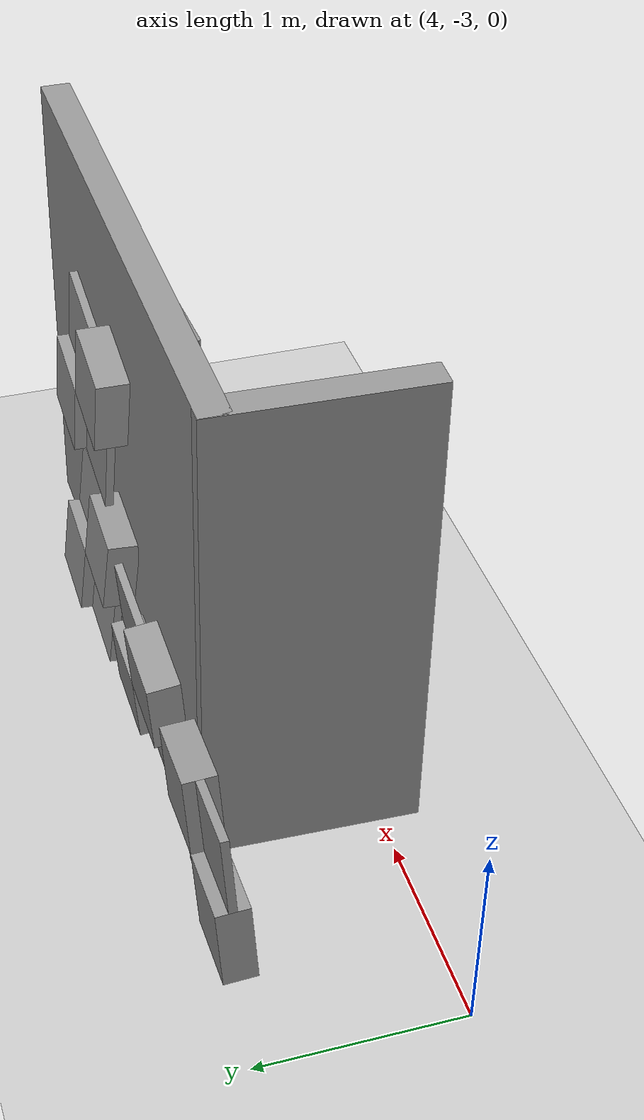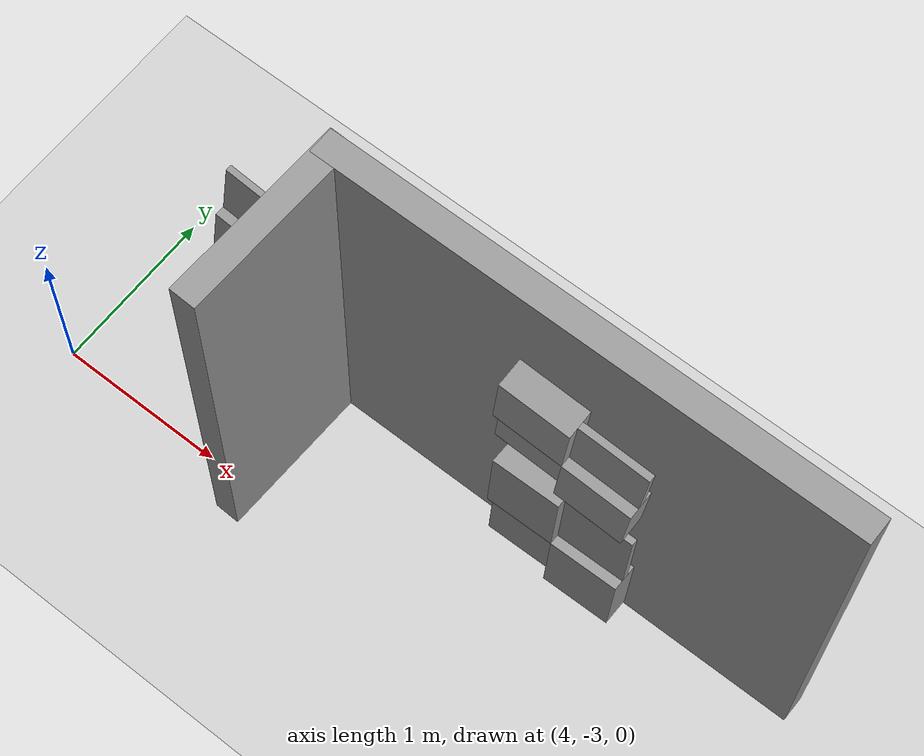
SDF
<sdf version="1.7">
 <world name="default">
  <model name="demo_clean">
   <static>1</static>
   <link name="Wall_14">
    <collision name="Wall_14_Collision">
     <geometry><box><size>3 0.15 2.5</size></box></geometry>
     <pose>0 0 1.25 0 -0 0</pose>
     <surface>
      <friction>
       <ode><mu>1</mu><mu2>1</mu2><fdir1>0 0 0</fdir1><slip1>0</slip1><slip2>0</slip2></ode>
       <torsional>
        <coefficient>1</coefficient>
        <patch_radius>0</patch_radius>
        <surface_radius>0</surface_radius>
        <use_patch_radius>1</use_patch_radius>
        <ode><slip>0</slip></ode>
       </torsional>
      </friction>
      <bounce><restitution_coefficient>0</restitution_coefficient><threshold>1e+06</threshold></bounce>
      <contact>
       <collide_without_contact>0</collide_without_contact>
       <collide_without_contact_bitmask>1</collide_without_contact_bitmask>
       <collide_bitmask>1</collide_bitmask>
       <ode>
        <soft_cfm>0</soft_cfm>
        <soft_erp>0.2</soft_erp>
        <kp>1e+13</kp>
        <kd>1</kd>
        <max_vel>0.01</max_vel>
        <min_depth>0</min_depth>
       </ode>
       <bullet>
        <split_impulse>1</split_impulse>
        <split_impulse_penetration_threshold>-0.01</split_impulse_penetration_threshold>
        <soft_cfm>0</soft_cfm>
        <soft_erp>0.2</soft_erp>
        <kp>1e+13</kp>
        <kd>1</kd>
       </bullet>
      </contact>
     </surface>
    </collision>
    <visual name="Wall_14_Visual">
     <geometry><box><size>3 0.15 2.5</size></box></geometry>
     <material>
      <script><name>Gazebo/Grey</name><uri>file://media/materials/scripts/gazebo.material</uri></script>
      <ambient>1 1 1 1</ambient>
      <shader type="pixel"><normal_map>default</normal_map></shader>
     </material>
     <pose>0 0 1.25 0 -0 0</pose>
    </visual>
    <pose>6.72851 -2.20882 0 0 -0 0</pose>
   </link>
   <link name="Wall_42">
    <collision name="Wall_42_Collision">
     <geometry><box><size>1.05905 0.15 2.5</size></box></geometry>
     <pose>0 0 1.25 0 -0 0</pose>
     <surface>
      <friction>
       <ode><mu>1</mu><mu2>1</mu2><fdir1>0 0 0</fdir1><slip1>0</slip1><slip2>0</slip2></ode>
       <torsional>
        <coefficient>1</coefficient>
        <patch_radius>0</patch_radius>
        <surface_radius>0</surface_radius>
        <use_patch_radius>1</use_patch_radius>
        <ode><slip>0</slip></ode>
       </torsional>
      </friction>
      <bounce><restitution_coefficient>0</restitution_coefficient><threshold>1e+06</threshold></bounce>
      <contact>
       <collide_without_contact>0</collide_without_contact>
       <collide_without_contact_bitmask>1</collide_without_contact_bitmask>
       <collide_bitmask>1</collide_bitmask>
       <ode>
        <soft_cfm>0</soft_cfm>
        <soft_erp>0.2</soft_erp>
        <kp>1e+13</kp>
        <kd>1</kd>
        <max_vel>0.01</max_vel>
        <min_depth>0</min_depth>
       </ode>
       <bullet>
        <split_impulse>1</split_impulse>
        <split_impulse_penetration_threshold>-0.01</split_impulse_penetration_threshold>
        <soft_cfm>0</soft_cfm>
        <soft_erp>0.2</soft_erp>
        <kp>1e+13</kp>
        <kd>1</kd>
       </bullet>
      </contact>
     </surface>
    </collision>
    <visual name="Wall_42_Visual">
     <geometry><box><size>1.05905 0.15 2.5</size></box></geometry>
     <material>
      <script><name>Gazebo/Grey</name><uri>file://media/materials/scripts/gazebo.material</uri></script>
      <ambient>1 1 1 1</ambient>
      <shader type="pixel"><normal_map>default</normal_map></shader>
     </material>
     <pose>0 0 1.25 0 -0 0</pose>
    </visual>
    <pose>5.28364 -2.66264 0 0 -0 1.53905</pose>
   </link>
  </model>
  <model name="ground_plane">
   <static>1</static>
   <link name="link">
    <collision name="collision">
     <geometry><plane><normal>0 0 1</normal><size>100 100</size></plane></geometry>
     <surface>
      <contact><collide_bitmask>65535</collide_bitmask></contact>
      <friction><ode><mu>100</mu><mu2>50</mu2></ode></friction>
     </surface>
    </collision>
    <visual name="visual">
     <cast_shadows>0</cast_shadows>
     <geometry><plane><normal>0 0 1</normal><size>100 100</size></plane></geometry>
     <material>
      <script><uri>file://media/materials/scripts/gazebo.material</uri><name>Gazebo/Grey</name></script>
     </material>
    </visual>
   </link>
  </model>
  <model name="wall_slate_19">
   <static>1</static>
   <link name="link_0">
    <inertial><mass>1</mass></inertial>
    <gravity>0</gravity>
    <visual name="visual">
     <pose>0 0.2 0.2 0 -0 0</pose>
     <geometry><box><size>0.16 0.4 0.4</size></box></geometry>
     <material>
      <lighting>1</lighting>
      <script><uri>file://media/materials/scripts/gazebo.material</uri><name>Gazebo/Grey</name></script>
      <shader type="pixel"><normal_map>__default__</normal_map></shader>
      <ambient>0.3 0.3 0.3 1</ambient>
      <diffuse>0.7 0.7 0.7 1</diffuse>
      <specular>0.01 0.01 0.01 1</specular>
      <emissive>0 0 0 1</emissive>
     </material>
    </visual>
    <visual name="ModelPreview_0::link_0::visual_1">
     <pose>0 0.2 -0.2 0 -0 0</pose>
     <geometry><box><size>0.04 0.4 0.4</size></box></geometry>
     <material>
      <lighting>1</lighting>
      <script><uri>file://media/materials/scripts/gazebo.material</uri><name>Gazebo/Grey</name></script>
      <shader type="pixel"><normal_map>__default__</normal_map></shader>
      <ambient>0.3 0.3 0.3 1</ambient>
      <diffuse>0.7 0.7 0.7 1</diffuse>
      <specular>0.01 0.01 0.01 1</specular>
      <emissive>0 0 0 1</emissive>
     </material>
    </visual>
    <visual name="ModelPreview_0::link_0::visual_2">
     <pose>0 -0.2 0.2 0 -0 0</pose>
     <geometry><box><size>0.04 0.4 0.4</size></box></geometry>
     <material>
      <lighting>1</lighting>
      <script><uri>file://media/materials/scripts/gazebo.material</uri><name>Gazebo/Grey</name></script>
      <shader type="pixel"><normal_map>__default__</normal_map></shader>
      <ambient>0.3 0.3 0.3 1</ambient>
      <diffuse>0.7 0.7 0.7 1</diffuse>
      <specular>0.01 0.01 0.01 1</specular>
      <emissive>0 0 0 1</emissive>
     </material>
    </visual>
    <visual name="ModelPreview_0::link_0::visual_3">
     <pose>0 -0.2 -0.2 0 -0 0</pose>
     <geometry><box><size>0.16 0.4 0.4</size></box></geometry>
     <material>
      <lighting>1</lighting>
      <script><uri>file://media/materials/scripts/gazebo.material</uri><name>Gazebo/Grey</name></script>
      <shader type="pixel"><normal_map>__default__</normal_map></shader>
      <ambient>0.3 0.3 0.3 1</ambient>
      <diffuse>0.7 0.7 0.7 1</diffuse>
      <specular>0.01 0.01 0.01 1</specular>
      <emissive>0 0 0 1</emissive>
     </material>
    </visual>
    <collision name="collision_2">
     <pose>0 -0.2 0.2 0 -0 0</pose>
     <geometry><box><size>0.04 0.4 0.4</size></box></geometry>
     <surface>
      <friction>
       <ode><mu>1</mu><mu2>1</mu2><fdir1>0 0 0</fdir1><slip1>0</slip1><slip2>0</slip2></ode>
       <torsional>
        <coefficient>1</coefficient>
        <patch_radius>0</patch_radius>
        <surface_radius>0</surface_radius>
        <use_patch_radius>1</use_patch_radius>
        <ode><slip>0</slip></ode>
       </torsional>
      </friction>
      <bounce><restitution_coefficient>0</restitution_coefficient><threshold>1e+06</threshold></bounce>
      <contact>
       <collide_without_contact>0</collide_without_contact>
       <collide_without_contact_bitmask>1</collide_without_contact_bitmask>
       <collide_bitmask>1</collide_bitmask>
       <ode>
        <soft_cfm>0</soft_cfm>
        <soft_erp>0.2</soft_erp>
        <kp>1e+13</kp>
        <kd>1</kd>
        <max_vel>0.01</max_vel>
        <min_depth>0</min_depth>
       </ode>
       <bullet>
        <split_impulse>1</split_impulse>
        <split_impulse_penetration_threshold>-0.01</split_impulse_penetration_threshold>
        <soft_cfm>0</soft_cfm>
        <soft_erp>0.2</soft_erp>
        <kp>1e+13</kp>
        <kd>1</kd>
       </bullet>
      </contact>
     </surface>
    </collision>
    <collision name="collision_1">
     <pose>0 0.2 -0.2 0 -0 0</pose>
     <geometry><box><size>0.04 0.4 0.4</size></box></geometry>
     <surface>
      <friction>
       <ode><mu>1</mu><mu2>1</mu2><fdir1>0 0 0</fdir1><slip1>0</slip1><slip2>0</slip2></ode>
       <torsional>
        <coefficient>1</coefficient>
        <patch_radius>0</patch_radius>
        <surface_radius>0</surface_radius>
        <use_patch_radius>1</use_patch_radius>
        <ode><slip>0</slip></ode>
       </torsional>
      </friction>
      <bounce><restitution_coefficient>0</restitution_coefficient><threshold>1e+06</threshold></bounce>
      <contact>
       <collide_without_contact>0</collide_without_contact>
       <collide_without_contact_bitmask>1</collide_without_contact_bitmask>
       <collide_bitmask>1</collide_bitmask>
       <ode>
        <soft_cfm>0</soft_cfm>
        <soft_erp>0.2</soft_erp>
        <kp>1e+13</kp>
        <kd>1</kd>
        <max_vel>0.01</max_vel>
        <min_depth>0</min_depth>
       </ode>
       <bullet>
        <split_impulse>1</split_impulse>
        <split_impulse_penetration_threshold>-0.01</split_impulse_penetration_threshold>
        <soft_cfm>0</soft_cfm>
        <soft_erp>0.2</soft_erp>
        <kp>1e+13</kp>
        <kd>1</kd>
       </bullet>
      </contact>
     </surface>
    </collision>
    <collision name="collision_4">
     <pose>0 0.2 0.2 0 -0 0</pose>
     <geometry><box><size>0.16 0.4 0.4</size></box></geometry>
     <surface>
      <friction>
       <ode><mu>1</mu><mu2>1</mu2><fdir1>0 0 0</fdir1><slip1>0</slip1><slip2>0</slip2></ode>
       <torsional>
        <coefficient>1</coefficient>
        <patch_radius>0</patch_radius>
        <surface_radius>0</surface_radius>
        <use_patch_radius>1</use_patch_radius>
        <ode><slip>0</slip></ode>
       </torsional>
      </friction>
      <bounce><restitution_coefficient>0</restitution_coefficient><threshold>1e+06</threshold></bounce>
      <contact>
       <collide_without_contact>0</collide_without_contact>
       <collide_without_contact_bitmask>1</collide_without_contact_bitmask>
       <collide_bitmask>1</collide_bitmask>
       <ode>
        <soft_cfm>0</soft_cfm>
        <soft_erp>0.2</soft_erp>
        <kp>1e+13</kp>
        <kd>1</kd>
        <max_vel>0.01</max_vel>
        <min_depth>0</min_depth>
       </ode>
       <bullet>
        <split_impulse>1</split_impulse>
        <split_impulse_penetration_threshold>-0.01</split_impulse_penetration_threshold>
        <soft_cfm>0</soft_cfm>
        <soft_erp>0.2</soft_erp>
        <kp>1e+13</kp>
        <kd>1</kd>
       </bullet>
      </contact>
     </surface>
    </collision>
    <collision name="collision_3">
     <pose>0 -0.2 -0.2 0 -0 0</pose>
     <geometry><box><size>0.16 0.4 0.4</size></box></geometry>
     <surface>
      <friction>
       <ode><mu>1</mu><mu2>1</mu2><fdir1>0 0 0</fdir1><slip1>0</slip1><slip2>0</slip2></ode>
       <torsional>
        <coefficient>1</coefficient>
        <patch_radius>0</patch_radius>
        <surface_radius>0</surface_radius>
        <use_patch_radius>1</use_patch_radius>
        <ode><slip>0</slip></ode>
       </torsional>
      </friction>
      <bounce><restitution_coefficient>0</restitution_coefficient><threshold>1e+06</threshold></bounce>
      <contact>
       <collide_without_contact>0</collide_without_contact>
       <collide_without_contact_bitmask>1</collide_without_contact_bitmask>
       <collide_bitmask>1</collide_bitmask>
       <ode>
        <soft_cfm>0</soft_cfm>
        <soft_erp>0.2</soft_erp>
        <kp>1e+13</kp>
        <kd>1</kd>
        <max_vel>0.01</max_vel>
        <min_depth>0</min_depth>
       </ode>
       <bullet>
        <split_impulse>1</split_impulse>
        <split_impulse_penetration_threshold>-0.01</split_impulse_penetration_threshold>
        <soft_cfm>0</soft_cfm>
        <soft_erp>0.2</soft_erp>
        <kp>1e+13</kp>
        <kd>1</kd>
       </bullet>
      </contact>
     </surface>
    </collision>
   </link>
   <pose>6.82851 -2.03382 0.6 -0.1 -0.08 1.5757</pose>
  </model>
  <model name="wall_slate_30">
   <static>1</static>
   <link name="link_0">
    <inertial><mass>1</mass></inertial>
    <gravity>0</gravity>
    <visual name="visual">
     <pose>0 0.2 0.2 0 -0 0</pose>
     <geometry><box><size>0.16 0.4 0.4</size></box></geometry>
     <material>
      <lighting>1</lighting>
      <script><uri>file://media/materials/scripts/gazebo.material</uri><name>Gazebo/Grey</name></script>
      <shader type="pixel"><normal_map>__default__</normal_map></shader>
      <ambient>0.3 0.3 0.3 1</ambient>
      <diffuse>0.7 0.7 0.7 1</diffuse>
      <specular>0.01 0.01 0.01 1</specular>
      <emissive>0 0 0 1</emissive>
     </material>
    </visual>
    <visual name="ModelPreview_0::link_0::visual_1">
     <pose>0 0.2 -0.2 0 -0 0</pose>
     <geometry><box><size>0.04 0.4 0.4</size></box></geometry>
     <material>
      <lighting>1</lighting>
      <script><uri>file://media/materials/scripts/gazebo.material</uri><name>Gazebo/Grey</name></script>
      <shader type="pixel"><normal_map>__default__</normal_map></shader>
      <ambient>0.3 0.3 0.3 1</ambient>
      <diffuse>0.7 0.7 0.7 1</diffuse>
      <specular>0.01 0.01 0.01 1</specular>
      <emissive>0 0 0 1</emissive>
     </material>
    </visual>
    <visual name="ModelPreview_0::link_0::visual_2">
     <pose>0 -0.2 0.2 0 -0 0</pose>
     <geometry><box><size>0.04 0.4 0.4</size></box></geometry>
     <material>
      <lighting>1</lighting>
      <script><uri>file://media/materials/scripts/gazebo.material</uri><name>Gazebo/Grey</name></script>
      <shader type="pixel"><normal_map>__default__</normal_map></shader>
      <ambient>0.3 0.3 0.3 1</ambient>
      <diffuse>0.7 0.7 0.7 1</diffuse>
      <specular>0.01 0.01 0.01 1</specular>
      <emissive>0 0 0 1</emissive>
     </material>
    </visual>
    <visual name="ModelPreview_0::link_0::visual_3">
     <pose>0 -0.2 -0.2 0 -0 0</pose>
     <geometry><box><size>0.16 0.4 0.4</size></box></geometry>
     <material>
      <lighting>1</lighting>
      <script><uri>file://media/materials/scripts/gazebo.material</uri><name>Gazebo/Grey</name></script>
      <shader type="pixel"><normal_map>__default__</normal_map></shader>
      <ambient>0.3 0.3 0.3 1</ambient>
      <diffuse>0.7 0.7 0.7 1</diffuse>
      <specular>0.01 0.01 0.01 1</specular>
      <emissive>0 0 0 1</emissive>
     </material>
    </visual>
    <collision name="collision_2">
     <pose>0 -0.2 0.2 0 -0 0</pose>
     <geometry><box><size>0.04 0.4 0.4</size></box></geometry>
     <surface>
      <friction>
       <ode><mu>1</mu><mu2>1</mu2><fdir1>0 0 0</fdir1><slip1>0</slip1><slip2>0</slip2></ode>
       <torsional>
        <coefficient>1</coefficient>
        <patch_radius>0</patch_radius>
        <surface_radius>0</surface_radius>
        <use_patch_radius>1</use_patch_radius>
        <ode><slip>0</slip></ode>
       </torsional>
      </friction>
      <bounce><restitution_coefficient>0</restitution_coefficient><threshold>1e+06</threshold></bounce>
      <contact>
       <collide_without_contact>0</collide_without_contact>
       <collide_without_contact_bitmask>1</collide_without_contact_bitmask>
       <collide_bitmask>1</collide_bitmask>
       <ode>
        <soft_cfm>0</soft_cfm>
        <soft_erp>0.2</soft_erp>
        <kp>1e+13</kp>
        <kd>1</kd>
        <max_vel>0.01</max_vel>
        <min_depth>0</min_depth>
       </ode>
       <bullet>
        <split_impulse>1</split_impulse>
        <split_impulse_penetration_threshold>-0.01</split_impulse_penetration_threshold>
        <soft_cfm>0</soft_cfm>
        <soft_erp>0.2</soft_erp>
        <kp>1e+13</kp>
        <kd>1</kd>
       </bullet>
      </contact>
     </surface>
    </collision>
    <collision name="collision_1">
     <pose>0 0.2 -0.2 0 -0 0</pose>
     <geometry><box><size>0.04 0.4 0.4</size></box></geometry>
     <surface>
      <friction>
       <ode><mu>1</mu><mu2>1</mu2><fdir1>0 0 0</fdir1><slip1>0</slip1><slip2>0</slip2></ode>
       <torsional>
        <coefficient>1</coefficient>
        <patch_radius>0</patch_radius>
        <surface_radius>0</surface_radius>
        <use_patch_radius>1</use_patch_radius>
        <ode><slip>0</slip></ode>
       </torsional>
      </friction>
      <bounce><restitution_coefficient>0</restitution_coefficient><threshold>1e+06</threshold></bounce>
      <contact>
       <collide_without_contact>0</collide_without_contact>
       <collide_without_contact_bitmask>1</collide_without_contact_bitmask>
       <collide_bitmask>1</collide_bitmask>
       <ode>
        <soft_cfm>0</soft_cfm>
        <soft_erp>0.2</soft_erp>
        <kp>1e+13</kp>
        <kd>1</kd>
        <max_vel>0.01</max_vel>
        <min_depth>0</min_depth>
       </ode>
       <bullet>
        <split_impulse>1</split_impulse>
        <split_impulse_penetration_threshold>-0.01</split_impulse_penetration_threshold>
        <soft_cfm>0</soft_cfm>
        <soft_erp>0.2</soft_erp>
        <kp>1e+13</kp>
        <kd>1</kd>
       </bullet>
      </contact>
     </surface>
    </collision>
    <collision name="collision_4">
     <pose>0 0.2 0.2 0 -0 0</pose>
     <geometry><box><size>0.16 0.4 0.4</size></box></geometry>
     <surface>
      <friction>
       <ode><mu>1</mu><mu2>1</mu2><fdir1>0 0 0</fdir1><slip1>0</slip1><slip2>0</slip2></ode>
       <torsional>
        <coefficient>1</coefficient>
        <patch_radius>0</patch_radius>
        <surface_radius>0</surface_radius>
        <use_patch_radius>1</use_patch_radius>
        <ode><slip>0</slip></ode>
       </torsional>
      </friction>
      <bounce><restitution_coefficient>0</restitution_coefficient><threshold>1e+06</threshold></bounce>
      <contact>
       <collide_without_contact>0</collide_without_contact>
       <collide_without_contact_bitmask>1</collide_without_contact_bitmask>
       <collide_bitmask>1</collide_bitmask>
       <ode>
        <soft_cfm>0</soft_cfm>
        <soft_erp>0.2</soft_erp>
        <kp>1e+13</kp>
        <kd>1</kd>
        <max_vel>0.01</max_vel>
        <min_depth>0</min_depth>
       </ode>
       <bullet>
        <split_impulse>1</split_impulse>
        <split_impulse_penetration_threshold>-0.01</split_impulse_penetration_threshold>
        <soft_cfm>0</soft_cfm>
        <soft_erp>0.2</soft_erp>
        <kp>1e+13</kp>
        <kd>1</kd>
       </bullet>
      </contact>
     </surface>
    </collision>
    <collision name="collision_3">
     <pose>0 -0.2 -0.2 0 -0 0</pose>
     <geometry><box><size>0.16 0.4 0.4</size></box></geometry>
     <surface>
      <friction>
       <ode><mu>1</mu><mu2>1</mu2><fdir1>0 0 0</fdir1><slip1>0</slip1><slip2>0</slip2></ode>
       <torsional>
        <coefficient>1</coefficient>
        <patch_radius>0</patch_radius>
        <surface_radius>0</surface_radius>
        <use_patch_radius>1</use_patch_radius>
        <ode><slip>0</slip></ode>
       </torsional>
      </friction>
      <bounce><restitution_coefficient>0</restitution_coefficient><threshold>1e+06</threshold></bounce>
      <contact>
       <collide_without_contact>0</collide_without_contact>
       <collide_without_contact_bitmask>1</collide_without_contact_bitmask>
       <collide_bitmask>1</collide_bitmask>
       <ode>
        <soft_cfm>0</soft_cfm>
        <soft_erp>0.2</soft_erp>
        <kp>1e+13</kp>
        <kd>1</kd>
        <max_vel>0.01</max_vel>
        <min_depth>0</min_depth>
       </ode>
       <bullet>
        <split_impulse>1</split_impulse>
        <split_impulse_penetration_threshold>-0.01</split_impulse_penetration_threshold>
        <soft_cfm>0</soft_cfm>
        <soft_erp>0.2</soft_erp>
        <kp>1e+13</kp>
        <kd>1</kd>
       </bullet>
      </contact>
     </surface>
    </collision>
   </link>
   <pose>6.82851 -2.03382 1.6 -0.18 -0.02 1.5757</pose>
  </model>
  <model name="wall_slate_35">
   <static>1</static>
   <link name="link_0">
    <inertial><mass>1</mass></inertial>
    <gravity>0</gravity>
    <visual name="visual">
     <pose>0 0.2 0.2 0 -0 0</pose>
     <geometry><box><size>0.16 0.4 0.4</size></box></geometry>
     <material>
      <lighting>1</lighting>
      <script><uri>file://media/materials/scripts/gazebo.material</uri><name>Gazebo/Grey</name></script>
      <shader type="pixel"><normal_map>__default__</normal_map></shader>
      <ambient>0.3 0.3 0.3 1</ambient>
      <diffuse>0.7 0.7 0.7 1</diffuse>
      <specular>0.01 0.01 0.01 1</specular>
      <emissive>0 0 0 1</emissive>
     </material>
    </visual>
    <visual name="ModelPreview_0::link_0::visual_1">
     <pose>0 0.2 -0.2 0 -0 0</pose>
     <geometry><box><size>0.04 0.4 0.4</size></box></geometry>
     <material>
      <lighting>1</lighting>
      <script><uri>file://media/materials/scripts/gazebo.material</uri><name>Gazebo/Grey</name></script>
      <shader type="pixel"><normal_map>__default__</normal_map></shader>
      <ambient>0.3 0.3 0.3 1</ambient>
      <diffuse>0.7 0.7 0.7 1</diffuse>
      <specular>0.01 0.01 0.01 1</specular>
      <emissive>0 0 0 1</emissive>
     </material>
    </visual>
    <visual name="ModelPreview_0::link_0::visual_2">
     <pose>0 -0.2 0.2 0 -0 0</pose>
     <geometry><box><size>0.04 0.4 0.4</size></box></geometry>
     <material>
      <lighting>1</lighting>
      <script><uri>file://media/materials/scripts/gazebo.material</uri><name>Gazebo/Grey</name></script>
      <shader type="pixel"><normal_map>__default__</normal_map></shader>
      <ambient>0.3 0.3 0.3 1</ambient>
      <diffuse>0.7 0.7 0.7 1</diffuse>
      <specular>0.01 0.01 0.01 1</specular>
      <emissive>0 0 0 1</emissive>
     </material>
    </visual>
    <visual name="ModelPreview_0::link_0::visual_3">
     <pose>0 -0.2 -0.2 0 -0 0</pose>
     <geometry><box><size>0.16 0.4 0.4</size></box></geometry>
     <material>
      <lighting>1</lighting>
      <script><uri>file://media/materials/scripts/gazebo.material</uri><name>Gazebo/Grey</name></script>
      <shader type="pixel"><normal_map>__default__</normal_map></shader>
      <ambient>0.3 0.3 0.3 1</ambient>
      <diffuse>0.7 0.7 0.7 1</diffuse>
      <specular>0.01 0.01 0.01 1</specular>
      <emissive>0 0 0 1</emissive>
     </material>
    </visual>
    <collision name="collision_2">
     <pose>0 -0.2 0.2 0 -0 0</pose>
     <geometry><box><size>0.04 0.4 0.4</size></box></geometry>
     <surface>
      <friction>
       <ode><mu>1</mu><mu2>1</mu2><fdir1>0 0 0</fdir1><slip1>0</slip1><slip2>0</slip2></ode>
       <torsional>
        <coefficient>1</coefficient>
        <patch_radius>0</patch_radius>
        <surface_radius>0</surface_radius>
        <use_patch_radius>1</use_patch_radius>
        <ode><slip>0</slip></ode>
       </torsional>
      </friction>
      <bounce><restitution_coefficient>0</restitution_coefficient><threshold>1e+06</threshold></bounce>
      <contact>
       <collide_without_contact>0</collide_without_contact>
       <collide_without_contact_bitmask>1</collide_without_contact_bitmask>
       <collide_bitmask>1</collide_bitmask>
       <ode>
        <soft_cfm>0</soft_cfm>
        <soft_erp>0.2</soft_erp>
        <kp>1e+13</kp>
        <kd>1</kd>
        <max_vel>0.01</max_vel>
        <min_depth>0</min_depth>
       </ode>
       <bullet>
        <split_impulse>1</split_impulse>
        <split_impulse_penetration_threshold>-0.01</split_impulse_penetration_threshold>
        <soft_cfm>0</soft_cfm>
        <soft_erp>0.2</soft_erp>
        <kp>1e+13</kp>
        <kd>1</kd>
       </bullet>
      </contact>
     </surface>
    </collision>
    <collision name="collision_1">
     <pose>0 0.2 -0.2 0 -0 0</pose>
     <geometry><box><size>0.04 0.4 0.4</size></box></geometry>
     <surface>
      <friction>
       <ode><mu>1</mu><mu2>1</mu2><fdir1>0 0 0</fdir1><slip1>0</slip1><slip2>0</slip2></ode>
       <torsional>
        <coefficient>1</coefficient>
        <patch_radius>0</patch_radius>
        <surface_radius>0</surface_radius>
        <use_patch_radius>1</use_patch_radius>
        <ode><slip>0</slip></ode>
       </torsional>
      </friction>
      <bounce><restitution_coefficient>0</restitution_coefficient><threshold>1e+06</threshold></bounce>
      <contact>
       <collide_without_contact>0</collide_without_contact>
       <collide_without_contact_bitmask>1</collide_without_contact_bitmask>
       <collide_bitmask>1</collide_bitmask>
       <ode>
        <soft_cfm>0</soft_cfm>
        <soft_erp>0.2</soft_erp>
        <kp>1e+13</kp>
        <kd>1</kd>
        <max_vel>0.01</max_vel>
        <min_depth>0</min_depth>
       </ode>
       <bullet>
        <split_impulse>1</split_impulse>
        <split_impulse_penetration_threshold>-0.01</split_impulse_penetration_threshold>
        <soft_cfm>0</soft_cfm>
        <soft_erp>0.2</soft_erp>
        <kp>1e+13</kp>
        <kd>1</kd>
       </bullet>
      </contact>
     </surface>
    </collision>
    <collision name="collision_4">
     <pose>0 0.2 0.2 0 -0 0</pose>
     <geometry><box><size>0.16 0.4 0.4</size></box></geometry>
     <surface>
      <friction>
       <ode><mu>1</mu><mu2>1</mu2><fdir1>0 0 0</fdir1><slip1>0</slip1><slip2>0</slip2></ode>
       <torsional>
        <coefficient>1</coefficient>
        <patch_radius>0</patch_radius>
        <surface_radius>0</surface_radius>
        <use_patch_radius>1</use_patch_radius>
        <ode><slip>0</slip></ode>
       </torsional>
      </friction>
      <bounce><restitution_coefficient>0</restitution_coefficient><threshold>1e+06</threshold></bounce>
      <contact>
       <collide_without_contact>0</collide_without_contact>
       <collide_without_contact_bitmask>1</collide_without_contact_bitmask>
       <collide_bitmask>1</collide_bitmask>
       <ode>
        <soft_cfm>0</soft_cfm>
        <soft_erp>0.2</soft_erp>
        <kp>1e+13</kp>
        <kd>1</kd>
        <max_vel>0.01</max_vel>
        <min_depth>0</min_depth>
       </ode>
       <bullet>
        <split_impulse>1</split_impulse>
        <split_impulse_penetration_threshold>-0.01</split_impulse_penetration_threshold>
        <soft_cfm>0</soft_cfm>
        <soft_erp>0.2</soft_erp>
        <kp>1e+13</kp>
        <kd>1</kd>
       </bullet>
      </contact>
     </surface>
    </collision>
    <collision name="collision_3">
     <pose>0 -0.2 -0.2 0 -0 0</pose>
     <geometry><box><size>0.16 0.4 0.4</size></box></geometry>
     <surface>
      <friction>
       <ode><mu>1</mu><mu2>1</mu2><fdir1>0 0 0</fdir1><slip1>0</slip1><slip2>0</slip2></ode>
       <torsional>
        <coefficient>1</coefficient>
        <patch_radius>0</patch_radius>
        <surface_radius>0</surface_radius>
        <use_patch_radius>1</use_patch_radius>
        <ode><slip>0</slip></ode>
       </torsional>
      </friction>
      <bounce><restitution_coefficient>0</restitution_coefficient><threshold>1e+06</threshold></bounce>
      <contact>
       <collide_without_contact>0</collide_without_contact>
       <collide_without_contact_bitmask>1</collide_without_contact_bitmask>
       <collide_bitmask>1</collide_bitmask>
       <ode>
        <soft_cfm>0</soft_cfm>
        <soft_erp>0.2</soft_erp>
        <kp>1e+13</kp>
        <kd>1</kd>
        <max_vel>0.01</max_vel>
        <min_depth>0</min_depth>
       </ode>
       <bullet>
        <split_impulse>1</split_impulse>
        <split_impulse_penetration_threshold>-0.01</split_impulse_penetration_threshold>
        <soft_cfm>0</soft_cfm>
        <soft_erp>0.2</soft_erp>
        <kp>1e+13</kp>
        <kd>1</kd>
       </bullet>
      </contact>
     </surface>
    </collision>
   </link>
   <pose>4.71503 -2.02059 0.6 -0.1 -0.06 -1.57626</pose>
  </model>
  <model name="wall_slate_79">
   <static>1</static>
   <link name="link_0">
    <inertial><mass>1</mass></inertial>
    <gravity>0</gravity>
    <visual name="visual">
     <pose>0 0.2 0.2 0 -0 0</pose>
     <geometry><box><size>0.16 0.4 0.4</size></box></geometry>
     <material>
      <lighting>1</lighting>
      <script><uri>file://media/materials/scripts/gazebo.material</uri><name>Gazebo/Grey</name></script>
      <shader type="pixel"><normal_map>__default__</normal_map></shader>
      <ambient>0.3 0.3 0.3 1</ambient>
      <diffuse>0.7 0.7 0.7 1</diffuse>
      <specular>0.01 0.01 0.01 1</specular>
      <emissive>0 0 0 1</emissive>
     </material>
    </visual>
    <visual name="ModelPreview_0::link_0::visual_1">
     <pose>0 0.2 -0.2 0 -0 0</pose>
     <geometry><box><size>0.04 0.4 0.4</size></box></geometry>
     <material>
      <lighting>1</lighting>
      <script><uri>file://media/materials/scripts/gazebo.material</uri><name>Gazebo/Grey</name></script>
      <shader type="pixel"><normal_map>__default__</normal_map></shader>
      <ambient>0.3 0.3 0.3 1</ambient>
      <diffuse>0.7 0.7 0.7 1</diffuse>
      <specular>0.01 0.01 0.01 1</specular>
      <emissive>0 0 0 1</emissive>
     </material>
    </visual>
    <visual name="ModelPreview_0::link_0::visual_2">
     <pose>0 -0.2 0.2 0 -0 0</pose>
     <geometry><box><size>0.04 0.4 0.4</size></box></geometry>
     <material>
      <lighting>1</lighting>
      <script><uri>file://media/materials/scripts/gazebo.material</uri><name>Gazebo/Grey</name></script>
      <shader type="pixel"><normal_map>__default__</normal_map></shader>
      <ambient>0.3 0.3 0.3 1</ambient>
      <diffuse>0.7 0.7 0.7 1</diffuse>
      <specular>0.01 0.01 0.01 1</specular>
      <emissive>0 0 0 1</emissive>
     </material>
    </visual>
    <visual name="ModelPreview_0::link_0::visual_3">
     <pose>0 -0.2 -0.2 0 -0 0</pose>
     <geometry><box><size>0.16 0.4 0.4</size></box></geometry>
     <material>
      <lighting>1</lighting>
      <script><uri>file://media/materials/scripts/gazebo.material</uri><name>Gazebo/Grey</name></script>
      <shader type="pixel"><normal_map>__default__</normal_map></shader>
      <ambient>0.3 0.3 0.3 1</ambient>
      <diffuse>0.7 0.7 0.7 1</diffuse>
      <specular>0.01 0.01 0.01 1</specular>
      <emissive>0 0 0 1</emissive>
     </material>
    </visual>
    <collision name="collision_2">
     <pose>0 -0.2 0.2 0 -0 0</pose>
     <geometry><box><size>0.04 0.4 0.4</size></box></geometry>
     <surface>
      <friction>
       <ode><mu>1</mu><mu2>1</mu2><fdir1>0 0 0</fdir1><slip1>0</slip1><slip2>0</slip2></ode>
       <torsional>
        <coefficient>1</coefficient>
        <patch_radius>0</patch_radius>
        <surface_radius>0</surface_radius>
        <use_patch_radius>1</use_patch_radius>
        <ode><slip>0</slip></ode>
       </torsional>
      </friction>
      <bounce><restitution_coefficient>0</restitution_coefficient><threshold>1e+06</threshold></bounce>
      <contact>
       <collide_without_contact>0</collide_without_contact>
       <collide_without_contact_bitmask>1</collide_without_contact_bitmask>
       <collide_bitmask>1</collide_bitmask>
       <ode>
        <soft_cfm>0</soft_cfm>
        <soft_erp>0.2</soft_erp>
        <kp>1e+13</kp>
        <kd>1</kd>
        <max_vel>0.01</max_vel>
        <min_depth>0</min_depth>
       </ode>
       <bullet>
        <split_impulse>1</split_impulse>
        <split_impulse_penetration_threshold>-0.01</split_impulse_penetration_threshold>
        <soft_cfm>0</soft_cfm>
        <soft_erp>0.2</soft_erp>
        <kp>1e+13</kp>
        <kd>1</kd>
       </bullet>
      </contact>
     </surface>
    </collision>
    <collision name="collision_1">
     <pose>0 0.2 -0.2 0 -0 0</pose>
     <geometry><box><size>0.04 0.4 0.4</size></box></geometry>
     <surface>
      <friction>
       <ode><mu>1</mu><mu2>1</mu2><fdir1>0 0 0</fdir1><slip1>0</slip1><slip2>0</slip2></ode>
       <torsional>
        <coefficient>1</coefficient>
        <patch_radius>0</patch_radius>
        <surface_radius>0</surface_radius>
        <use_patch_radius>1</use_patch_radius>
        <ode><slip>0</slip></ode>
       </torsional>
      </friction>
      <bounce><restitution_coefficient>0</restitution_coefficient><threshold>1e+06</threshold></bounce>
      <contact>
       <collide_without_contact>0</collide_without_contact>
       <collide_without_contact_bitmask>1</collide_without_contact_bitmask>
       <collide_bitmask>1</collide_bitmask>
       <ode>
        <soft_cfm>0</soft_cfm>
        <soft_erp>0.2</soft_erp>
        <kp>1e+13</kp>
        <kd>1</kd>
        <max_vel>0.01</max_vel>
        <min_depth>0</min_depth>
       </ode>
       <bullet>
        <split_impulse>1</split_impulse>
        <split_impulse_penetration_threshold>-0.01</split_impulse_penetration_threshold>
        <soft_cfm>0</soft_cfm>
        <soft_erp>0.2</soft_erp>
        <kp>1e+13</kp>
        <kd>1</kd>
       </bullet>
      </contact>
     </surface>
    </collision>
    <collision name="collision_4">
     <pose>0 0.2 0.2 0 -0 0</pose>
     <geometry><box><size>0.16 0.4 0.4</size></box></geometry>
     <surface>
      <friction>
       <ode><mu>1</mu><mu2>1</mu2><fdir1>0 0 0</fdir1><slip1>0</slip1><slip2>0</slip2></ode>
       <torsional>
        <coefficient>1</coefficient>
        <patch_radius>0</patch_radius>
        <surface_radius>0</surface_radius>
        <use_patch_radius>1</use_patch_radius>
        <ode><slip>0</slip></ode>
       </torsional>
      </friction>
      <bounce><restitution_coefficient>0</restitution_coefficient><threshold>1e+06</threshold></bounce>
      <contact>
       <collide_without_contact>0</collide_without_contact>
       <collide_without_contact_bitmask>1</collide_without_contact_bitmask>
       <collide_bitmask>1</collide_bitmask>
       <ode>
        <soft_cfm>0</soft_cfm>
        <soft_erp>0.2</soft_erp>
        <kp>1e+13</kp>
        <kd>1</kd>
        <max_vel>0.01</max_vel>
        <min_depth>0</min_depth>
       </ode>
       <bullet>
        <split_impulse>1</split_impulse>
        <split_impulse_penetration_threshold>-0.01</split_impulse_penetration_threshold>
        <soft_cfm>0</soft_cfm>
        <soft_erp>0.2</soft_erp>
        <kp>1e+13</kp>
        <kd>1</kd>
       </bullet>
      </contact>
     </surface>
    </collision>
    <collision name="collision_3">
     <pose>0 -0.2 -0.2 0 -0 0</pose>
     <geometry><box><size>0.16 0.4 0.4</size></box></geometry>
     <surface>
      <friction>
       <ode><mu>1</mu><mu2>1</mu2><fdir1>0 0 0</fdir1><slip1>0</slip1><slip2>0</slip2></ode>
       <torsional>
        <coefficient>1</coefficient>
        <patch_radius>0</patch_radius>
        <surface_radius>0</surface_radius>
        <use_patch_radius>1</use_patch_radius>
        <ode><slip>0</slip></ode>
       </torsional>
      </friction>
      <bounce><restitution_coefficient>0</restitution_coefficient><threshold>1e+06</threshold></bounce>
      <contact>
       <collide_without_contact>0</collide_without_contact>
       <collide_without_contact_bitmask>1</collide_without_contact_bitmask>
       <collide_bitmask>1</collide_bitmask>
       <ode>
        <soft_cfm>0</soft_cfm>
        <soft_erp>0.2</soft_erp>
        <kp>1e+13</kp>
        <kd>1</kd>
        <max_vel>0.01</max_vel>
        <min_depth>0</min_depth>
       </ode>
       <bullet>
        <split_impulse>1</split_impulse>
        <split_impulse_penetration_threshold>-0.01</split_impulse_penetration_threshold>
        <soft_cfm>0</soft_cfm>
        <soft_erp>0.2</soft_erp>
        <kp>1e+13</kp>
        <kd>1</kd>
       </bullet>
      </contact>
     </surface>
    </collision>
   </link>
   <pose>6.82851 -2.38382 0.6 -0.02 0.1 1.5757</pose>
  </model>
  <model name="wall_slate_91">
   <static>1</static>
   <link name="link_0">
    <inertial><mass>1</mass></inertial>
    <gravity>0</gravity>
    <visual name="visual">
     <pose>0 0.2 0.2 0 -0 0</pose>
     <geometry><box><size>0.16 0.4 0.4</size></box></geometry>
     <material>
      <lighting>1</lighting>
      <script><uri>file://media/materials/scripts/gazebo.material</uri><name>Gazebo/Grey</name></script>
      <shader type="pixel"><normal_map>__default__</normal_map></shader>
      <ambient>0.3 0.3 0.3 1</ambient>
      <diffuse>0.7 0.7 0.7 1</diffuse>
      <specular>0.01 0.01 0.01 1</specular>
      <emissive>0 0 0 1</emissive>
     </material>
    </visual>
    <visual name="ModelPreview_0::link_0::visual_1">
     <pose>0 0.2 -0.2 0 -0 0</pose>
     <geometry><box><size>0.04 0.4 0.4</size></box></geometry>
     <material>
      <lighting>1</lighting>
      <script><uri>file://media/materials/scripts/gazebo.material</uri><name>Gazebo/Grey</name></script>
      <shader type="pixel"><normal_map>__default__</normal_map></shader>
      <ambient>0.3 0.3 0.3 1</ambient>
      <diffuse>0.7 0.7 0.7 1</diffuse>
      <specular>0.01 0.01 0.01 1</specular>
      <emissive>0 0 0 1</emissive>
     </material>
    </visual>
    <visual name="ModelPreview_0::link_0::visual_2">
     <pose>0 -0.2 0.2 0 -0 0</pose>
     <geometry><box><size>0.04 0.4 0.4</size></box></geometry>
     <material>
      <lighting>1</lighting>
      <script><uri>file://media/materials/scripts/gazebo.material</uri><name>Gazebo/Grey</name></script>
      <shader type="pixel"><normal_map>__default__</normal_map></shader>
      <ambient>0.3 0.3 0.3 1</ambient>
      <diffuse>0.7 0.7 0.7 1</diffuse>
      <specular>0.01 0.01 0.01 1</specular>
      <emissive>0 0 0 1</emissive>
     </material>
    </visual>
    <visual name="ModelPreview_0::link_0::visual_3">
     <pose>0 -0.2 -0.2 0 -0 0</pose>
     <geometry><box><size>0.16 0.4 0.4</size></box></geometry>
     <material>
      <lighting>1</lighting>
      <script><uri>file://media/materials/scripts/gazebo.material</uri><name>Gazebo/Grey</name></script>
      <shader type="pixel"><normal_map>__default__</normal_map></shader>
      <ambient>0.3 0.3 0.3 1</ambient>
      <diffuse>0.7 0.7 0.7 1</diffuse>
      <specular>0.01 0.01 0.01 1</specular>
      <emissive>0 0 0 1</emissive>
     </material>
    </visual>
    <collision name="collision_2">
     <pose>0 -0.2 0.2 0 -0 0</pose>
     <geometry><box><size>0.04 0.4 0.4</size></box></geometry>
     <surface>
      <friction>
       <ode><mu>1</mu><mu2>1</mu2><fdir1>0 0 0</fdir1><slip1>0</slip1><slip2>0</slip2></ode>
       <torsional>
        <coefficient>1</coefficient>
        <patch_radius>0</patch_radius>
        <surface_radius>0</surface_radius>
        <use_patch_radius>1</use_patch_radius>
        <ode><slip>0</slip></ode>
       </torsional>
      </friction>
      <bounce><restitution_coefficient>0</restitution_coefficient><threshold>1e+06</threshold></bounce>
      <contact>
       <collide_without_contact>0</collide_without_contact>
       <collide_without_contact_bitmask>1</collide_without_contact_bitmask>
       <collide_bitmask>1</collide_bitmask>
       <ode>
        <soft_cfm>0</soft_cfm>
        <soft_erp>0.2</soft_erp>
        <kp>1e+13</kp>
        <kd>1</kd>
        <max_vel>0.01</max_vel>
        <min_depth>0</min_depth>
       </ode>
       <bullet>
        <split_impulse>1</split_impulse>
        <split_impulse_penetration_threshold>-0.01</split_impulse_penetration_threshold>
        <soft_cfm>0</soft_cfm>
        <soft_erp>0.2</soft_erp>
        <kp>1e+13</kp>
        <kd>1</kd>
       </bullet>
      </contact>
     </surface>
    </collision>
    <collision name="collision_1">
     <pose>0 0.2 -0.2 0 -0 0</pose>
     <geometry><box><size>0.04 0.4 0.4</size></box></geometry>
     <surface>
      <friction>
       <ode><mu>1</mu><mu2>1</mu2><fdir1>0 0 0</fdir1><slip1>0</slip1><slip2>0</slip2></ode>
       <torsional>
        <coefficient>1</coefficient>
        <patch_radius>0</patch_radius>
        <surface_radius>0</surface_radius>
        <use_patch_radius>1</use_patch_radius>
        <ode><slip>0</slip></ode>
       </torsional>
      </friction>
      <bounce><restitution_coefficient>0</restitution_coefficient><threshold>1e+06</threshold></bounce>
      <contact>
       <collide_without_contact>0</collide_without_contact>
       <collide_without_contact_bitmask>1</collide_without_contact_bitmask>
       <collide_bitmask>1</collide_bitmask>
       <ode>
        <soft_cfm>0</soft_cfm>
        <soft_erp>0.2</soft_erp>
        <kp>1e+13</kp>
        <kd>1</kd>
        <max_vel>0.01</max_vel>
        <min_depth>0</min_depth>
       </ode>
       <bullet>
        <split_impulse>1</split_impulse>
        <split_impulse_penetration_threshold>-0.01</split_impulse_penetration_threshold>
        <soft_cfm>0</soft_cfm>
        <soft_erp>0.2</soft_erp>
        <kp>1e+13</kp>
        <kd>1</kd>
       </bullet>
      </contact>
     </surface>
    </collision>
    <collision name="collision_4">
     <pose>0 0.2 0.2 0 -0 0</pose>
     <geometry><box><size>0.16 0.4 0.4</size></box></geometry>
     <surface>
      <friction>
       <ode><mu>1</mu><mu2>1</mu2><fdir1>0 0 0</fdir1><slip1>0</slip1><slip2>0</slip2></ode>
       <torsional>
        <coefficient>1</coefficient>
        <patch_radius>0</patch_radius>
        <surface_radius>0</surface_radius>
        <use_patch_radius>1</use_patch_radius>
        <ode><slip>0</slip></ode>
       </torsional>
      </friction>
      <bounce><restitution_coefficient>0</restitution_coefficient><threshold>1e+06</threshold></bounce>
      <contact>
       <collide_without_contact>0</collide_without_contact>
       <collide_without_contact_bitmask>1</collide_without_contact_bitmask>
       <collide_bitmask>1</collide_bitmask>
       <ode>
        <soft_cfm>0</soft_cfm>
        <soft_erp>0.2</soft_erp>
        <kp>1e+13</kp>
        <kd>1</kd>
        <max_vel>0.01</max_vel>
        <min_depth>0</min_depth>
       </ode>
       <bullet>
        <split_impulse>1</split_impulse>
        <split_impulse_penetration_threshold>-0.01</split_impulse_penetration_threshold>
        <soft_cfm>0</soft_cfm>
        <soft_erp>0.2</soft_erp>
        <kp>1e+13</kp>
        <kd>1</kd>
       </bullet>
      </contact>
     </surface>
    </collision>
    <collision name="collision_3">
     <pose>0 -0.2 -0.2 0 -0 0</pose>
     <geometry><box><size>0.16 0.4 0.4</size></box></geometry>
     <surface>
      <friction>
       <ode><mu>1</mu><mu2>1</mu2><fdir1>0 0 0</fdir1><slip1>0</slip1><slip2>0</slip2></ode>
       <torsional>
        <coefficient>1</coefficient>
        <patch_radius>0</patch_radius>
        <surface_radius>0</surface_radius>
        <use_patch_radius>1</use_patch_radius>
        <ode><slip>0</slip></ode>
       </torsional>
      </friction>
      <bounce><restitution_coefficient>0</restitution_coefficient><threshold>1e+06</threshold></bounce>
      <contact>
       <collide_without_contact>0</collide_without_contact>
       <collide_without_contact_bitmask>1</collide_without_contact_bitmask>
       <collide_bitmask>1</collide_bitmask>
       <ode>
        <soft_cfm>0</soft_cfm>
        <soft_erp>0.2</soft_erp>
        <kp>1e+13</kp>
        <kd>1</kd>
        <max_vel>0.01</max_vel>
        <min_depth>0</min_depth>
       </ode>
       <bullet>
        <split_impulse>1</split_impulse>
        <split_impulse_penetration_threshold>-0.01</split_impulse_penetration_threshold>
        <soft_cfm>0</soft_cfm>
        <soft_erp>0.2</soft_erp>
        <kp>1e+13</kp>
        <kd>1</kd>
       </bullet>
      </contact>
     </surface>
    </collision>
   </link>
   <pose>6.82851 -2.38382 1.6 0.08 -0.04 1.5757</pose>
  </model>
  <model name="wall_slate_103">
   <static>1</static>
   <link name="link_0">
    <inertial><mass>1</mass></inertial>
    <gravity>0</gravity>
    <visual name="visual">
     <pose>0 0.2 0.2 0 -0 0</pose>
     <geometry><box><size>0.16 0.4 0.4</size></box></geometry>
     <material>
      <lighting>1</lighting>
      <script><uri>file://media/materials/scripts/gazebo.material</uri><name>Gazebo/Grey</name></script>
      <shader type="pixel"><normal_map>__default__</normal_map></shader>
      <ambient>0.3 0.3 0.3 1</ambient>
      <diffuse>0.7 0.7 0.7 1</diffuse>
      <specular>0.01 0.01 0.01 1</specular>
      <emissive>0 0 0 1</emissive>
     </material>
    </visual>
    <visual name="ModelPreview_0::link_0::visual_1">
     <pose>0 0.2 -0.2 0 -0 0</pose>
     <geometry><box><size>0.04 0.4 0.4</size></box></geometry>
     <material>
      <lighting>1</lighting>
      <script><uri>file://media/materials/scripts/gazebo.material</uri><name>Gazebo/Grey</name></script>
      <shader type="pixel"><normal_map>__default__</normal_map></shader>
      <ambient>0.3 0.3 0.3 1</ambient>
      <diffuse>0.7 0.7 0.7 1</diffuse>
      <specular>0.01 0.01 0.01 1</specular>
      <emissive>0 0 0 1</emissive>
     </material>
    </visual>
    <visual name="ModelPreview_0::link_0::visual_2">
     <pose>0 -0.2 0.2 0 -0 0</pose>
     <geometry><box><size>0.04 0.4 0.4</size></box></geometry>
     <material>
      <lighting>1</lighting>
      <script><uri>file://media/materials/scripts/gazebo.material</uri><name>Gazebo/Grey</name></script>
      <shader type="pixel"><normal_map>__default__</normal_map></shader>
      <ambient>0.3 0.3 0.3 1</ambient>
      <diffuse>0.7 0.7 0.7 1</diffuse>
      <specular>0.01 0.01 0.01 1</specular>
      <emissive>0 0 0 1</emissive>
     </material>
    </visual>
    <visual name="ModelPreview_0::link_0::visual_3">
     <pose>0 -0.2 -0.2 0 -0 0</pose>
     <geometry><box><size>0.16 0.4 0.4</size></box></geometry>
     <material>
      <lighting>1</lighting>
      <script><uri>file://media/materials/scripts/gazebo.material</uri><name>Gazebo/Grey</name></script>
      <shader type="pixel"><normal_map>__default__</normal_map></shader>
      <ambient>0.3 0.3 0.3 1</ambient>
      <diffuse>0.7 0.7 0.7 1</diffuse>
      <specular>0.01 0.01 0.01 1</specular>
      <emissive>0 0 0 1</emissive>
     </material>
    </visual>
    <collision name="collision_2">
     <pose>0 -0.2 0.2 0 -0 0</pose>
     <geometry><box><size>0.04 0.4 0.4</size></box></geometry>
     <surface>
      <friction>
       <ode><mu>1</mu><mu2>1</mu2><fdir1>0 0 0</fdir1><slip1>0</slip1><slip2>0</slip2></ode>
       <torsional>
        <coefficient>1</coefficient>
        <patch_radius>0</patch_radius>
        <surface_radius>0</surface_radius>
        <use_patch_radius>1</use_patch_radius>
        <ode><slip>0</slip></ode>
       </torsional>
      </friction>
      <bounce><restitution_coefficient>0</restitution_coefficient><threshold>1e+06</threshold></bounce>
      <contact>
       <collide_without_contact>0</collide_without_contact>
       <collide_without_contact_bitmask>1</collide_without_contact_bitmask>
       <collide_bitmask>1</collide_bitmask>
       <ode>
        <soft_cfm>0</soft_cfm>
        <soft_erp>0.2</soft_erp>
        <kp>1e+13</kp>
        <kd>1</kd>
        <max_vel>0.01</max_vel>
        <min_depth>0</min_depth>
       </ode>
       <bullet>
        <split_impulse>1</split_impulse>
        <split_impulse_penetration_threshold>-0.01</split_impulse_penetration_threshold>
        <soft_cfm>0</soft_cfm>
        <soft_erp>0.2</soft_erp>
        <kp>1e+13</kp>
        <kd>1</kd>
       </bullet>
      </contact>
     </surface>
    </collision>
    <collision name="collision_1">
     <pose>0 0.2 -0.2 0 -0 0</pose>
     <geometry><box><size>0.04 0.4 0.4</size></box></geometry>
     <surface>
      <friction>
       <ode><mu>1</mu><mu2>1</mu2><fdir1>0 0 0</fdir1><slip1>0</slip1><slip2>0</slip2></ode>
       <torsional>
        <coefficient>1</coefficient>
        <patch_radius>0</patch_radius>
        <surface_radius>0</surface_radius>
        <use_patch_radius>1</use_patch_radius>
        <ode><slip>0</slip></ode>
       </torsional>
      </friction>
      <bounce><restitution_coefficient>0</restitution_coefficient><threshold>1e+06</threshold></bounce>
      <contact>
       <collide_without_contact>0</collide_without_contact>
       <collide_without_contact_bitmask>1</collide_without_contact_bitmask>
       <collide_bitmask>1</collide_bitmask>
       <ode>
        <soft_cfm>0</soft_cfm>
        <soft_erp>0.2</soft_erp>
        <kp>1e+13</kp>
        <kd>1</kd>
        <max_vel>0.01</max_vel>
        <min_depth>0</min_depth>
       </ode>
       <bullet>
        <split_impulse>1</split_impulse>
        <split_impulse_penetration_threshold>-0.01</split_impulse_penetration_threshold>
        <soft_cfm>0</soft_cfm>
        <soft_erp>0.2</soft_erp>
        <kp>1e+13</kp>
        <kd>1</kd>
       </bullet>
      </contact>
     </surface>
    </collision>
    <collision name="collision_4">
     <pose>0 0.2 0.2 0 -0 0</pose>
     <geometry><box><size>0.16 0.4 0.4</size></box></geometry>
     <surface>
      <friction>
       <ode><mu>1</mu><mu2>1</mu2><fdir1>0 0 0</fdir1><slip1>0</slip1><slip2>0</slip2></ode>
       <torsional>
        <coefficient>1</coefficient>
        <patch_radius>0</patch_radius>
        <surface_radius>0</surface_radius>
        <use_patch_radius>1</use_patch_radius>
        <ode><slip>0</slip></ode>
       </torsional>
      </friction>
      <bounce><restitution_coefficient>0</restitution_coefficient><threshold>1e+06</threshold></bounce>
      <contact>
       <collide_without_contact>0</collide_without_contact>
       <collide_without_contact_bitmask>1</collide_without_contact_bitmask>
       <collide_bitmask>1</collide_bitmask>
       <ode>
        <soft_cfm>0</soft_cfm>
        <soft_erp>0.2</soft_erp>
        <kp>1e+13</kp>
        <kd>1</kd>
        <max_vel>0.01</max_vel>
        <min_depth>0</min_depth>
       </ode>
       <bullet>
        <split_impulse>1</split_impulse>
        <split_impulse_penetration_threshold>-0.01</split_impulse_penetration_threshold>
        <soft_cfm>0</soft_cfm>
        <soft_erp>0.2</soft_erp>
        <kp>1e+13</kp>
        <kd>1</kd>
       </bullet>
      </contact>
     </surface>
    </collision>
    <collision name="collision_3">
     <pose>0 -0.2 -0.2 0 -0 0</pose>
     <geometry><box><size>0.16 0.4 0.4</size></box></geometry>
     <surface>
      <friction>
       <ode><mu>1</mu><mu2>1</mu2><fdir1>0 0 0</fdir1><slip1>0</slip1><slip2>0</slip2></ode>
       <torsional>
        <coefficient>1</coefficient>
        <patch_radius>0</patch_radius>
        <surface_radius>0</surface_radius>
        <use_patch_radius>1</use_patch_radius>
        <ode><slip>0</slip></ode>
       </torsional>
      </friction>
      <bounce><restitution_coefficient>0</restitution_coefficient><threshold>1e+06</threshold></bounce>
      <contact>
       <collide_without_contact>0</collide_without_contact>
       <collide_without_contact_bitmask>1</collide_without_contact_bitmask>
       <collide_bitmask>1</collide_bitmask>
       <ode>
        <soft_cfm>0</soft_cfm>
        <soft_erp>0.2</soft_erp>
        <kp>1e+13</kp>
        <kd>1</kd>
        <max_vel>0.01</max_vel>
        <min_depth>0</min_depth>
       </ode>
       <bullet>
        <split_impulse>1</split_impulse>
        <split_impulse_penetration_threshold>-0.01</split_impulse_penetration_threshold>
        <soft_cfm>0</soft_cfm>
        <soft_erp>0.2</soft_erp>
        <kp>1e+13</kp>
        <kd>1</kd>
       </bullet>
      </contact>
     </surface>
    </collision>
   </link>
   <pose>5.82851 -2.03382 0.6 -0.12 0.1 1.5757</pose>
  </model>
 </world>
</sdf>
